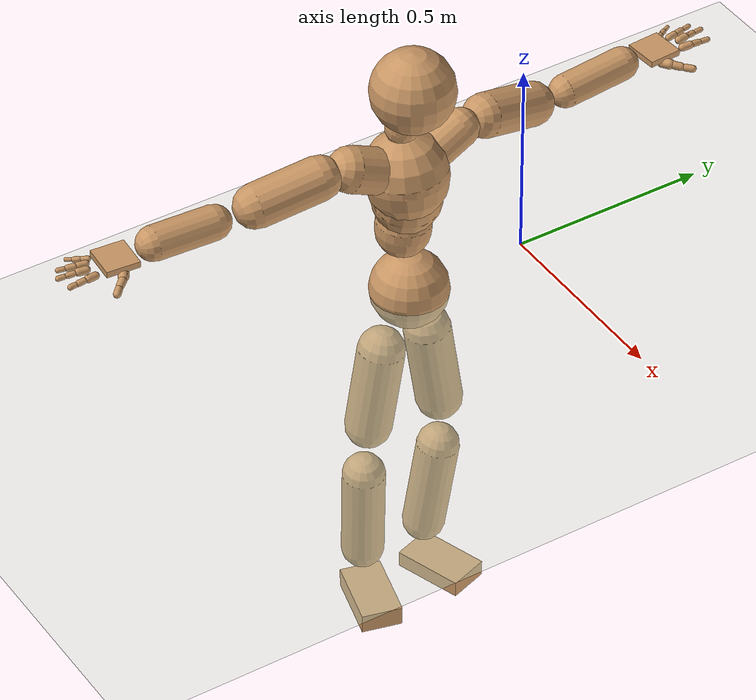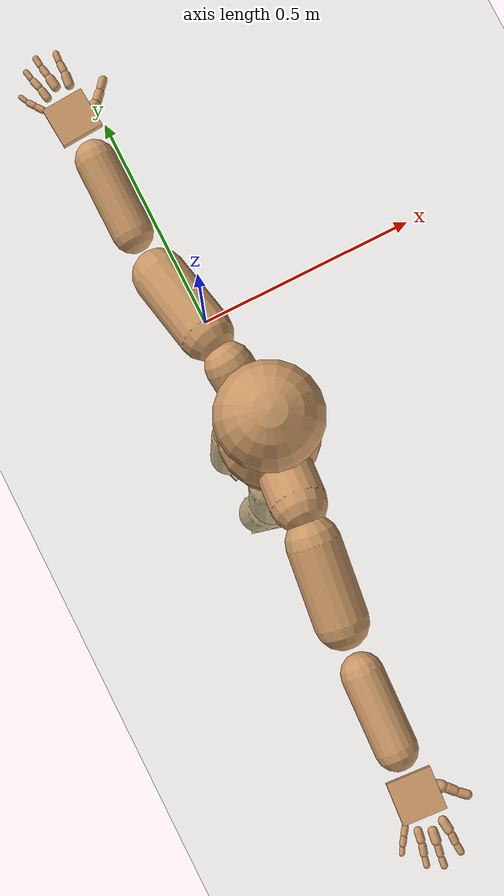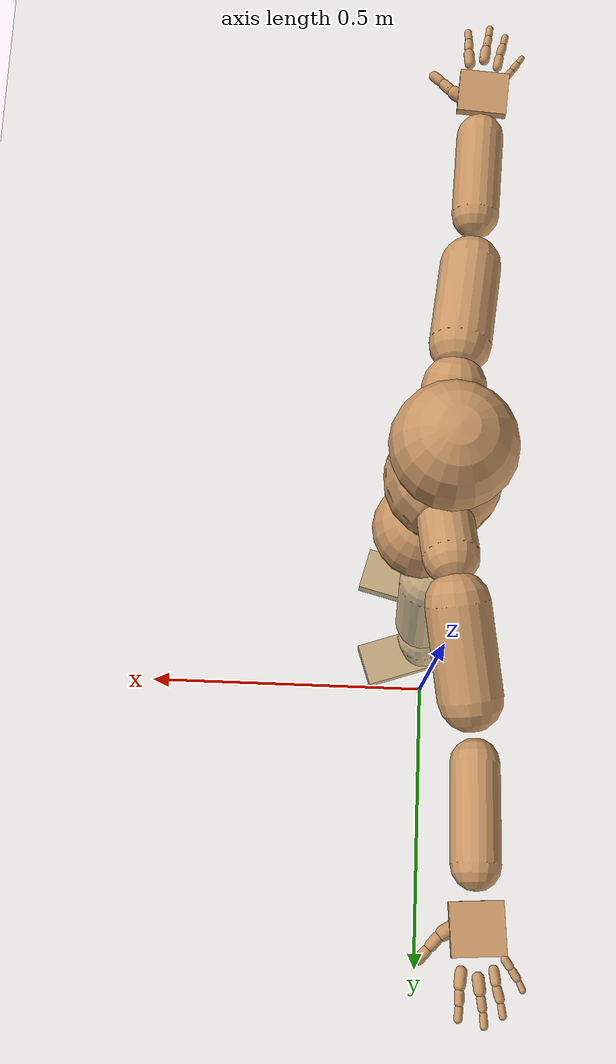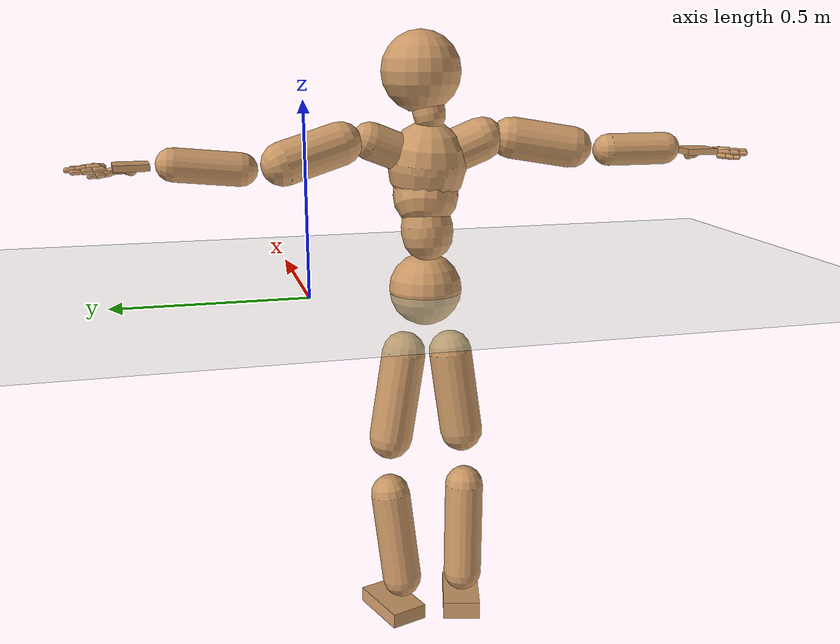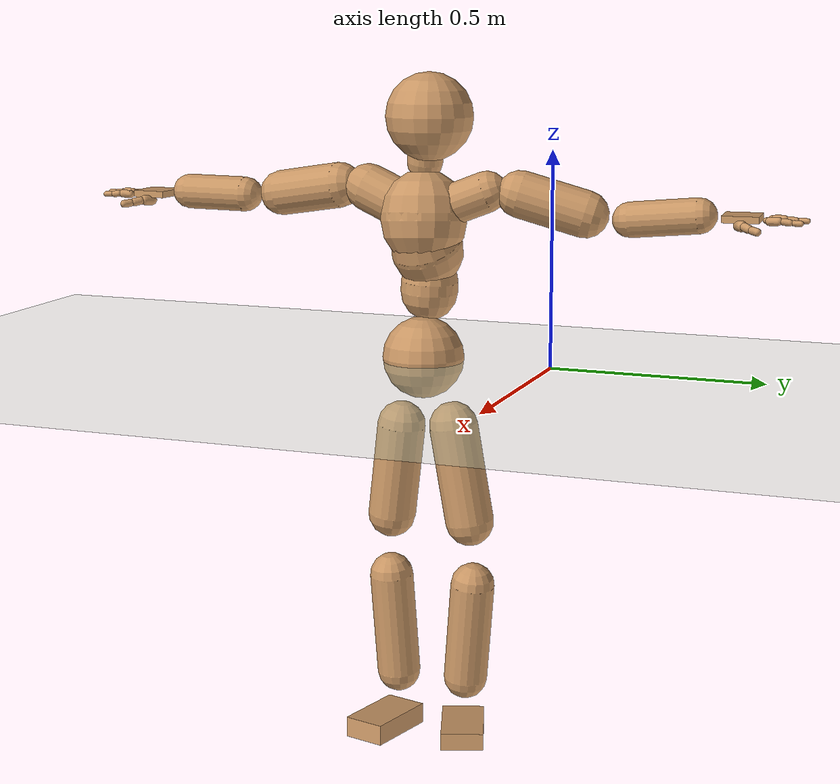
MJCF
<mujoco model="humanoid">
  <compiler coordinate="local" angle="radian"/>
  <default>
    <joint damping="0.0" armature="0.01" stiffness="0.0" limited="true"/>
    <geom conaffinity="1" condim="3" contype="7" margin="0.001" rgba="0.8 0.6 .4 1"/>
  </default>
  <asset>
    <texture type="skybox" builtin="gradient" rgb1=".4 .5 .6" rgb2="0 0 0" width="100" height="100"/>
    <texture builtin="flat" height="1278" mark="cross" markrgb="1 1 1" name="texgeom" random="0.01" rgb1="0.8 0.6 0.4" rgb2="0.8 0.6 0.4" type="cube" width="127"/>
    <texture builtin="checker" height="100" name="texplane" rgb1="0 0 0" rgb2="0.8 0.8 0.8" type="2d" width="100"/>
    <material name="MatPlane" reflectance="0.5" shininess="1" specular="1" texrepeat="60 60" texture="texplane"/>
    <material name="geom" texture="texgeom" texuniform="true"/>
  </asset>
  <worldbody>
    <light cutoff="100" diffuse="1 1 1" dir="-0 0 -1.3" directional="true" exponent="1" pos="0 0 1.3" specular=".1 .1 .1"/>
    <geom conaffinity="1" condim="3" name="floor" pos="0 0 0" rgba="0.8 0.9 0.8 1" size="100 100 .2" type="plane" material="MatPlane"/>
    <body name="Pelvis" pos="0.001 -0.3113 0.0059">
      <freejoint name="Pelvis"/>
      <geom type="sphere" contype="1" conaffinity="1" density="500" size="0.0966" pos="0.0000 0.0000 0.0000" name="Pelvis"/>
      <body name="L_Hip" pos="-0.024 0.053 -0.0884">
        <joint name="L_Hip_x" type="hinge" pos="0 0 0" axis="1 0 0" stiffness="800" damping="80" armature="0.02" range="-180.0000 180.0000"/>
        <joint name="L_Hip_y" type="hinge" pos="0 0 0" axis="0 1 0" stiffness="800" damping="80" armature="0.02" range="-180.0000 180.0000"/>
        <joint name="L_Hip_z" type="hinge" pos="0 0 0" axis="0 0 1" stiffness="800" damping="80" armature="0.02" range="-180.0000 180.0000"/>
        <geom type="capsule" contype="1" conaffinity="1" density="500" fromto="-0.0023 0.0132 -0.0786 -0.0092 0.0526 -0.3144" size="0.0581" name="L_Hip"/>
        <body name="L_Knee" pos="-0.0116 0.0658 -0.393">
          <joint name="L_Knee_x" type="hinge" pos="0 0 0" axis="1 0 0" stiffness="800" damping="80" armature="0.02" range="-180.0000 180.0000"/>
          <joint name="L_Knee_y" type="hinge" pos="0 0 0" axis="0 1 0" stiffness="800" damping="80" armature="0.02" range="-180.0000 180.0000"/>
          <joint name="L_Knee_z" type="hinge" pos="0 0 0" axis="0 0 1" stiffness="800" damping="80" armature="0.02" range="-180.0000 180.0000"/>
          <geom type="capsule" contype="1" conaffinity="1" density="500" fromto="-0.0078 -0.0085 -0.0829 -0.0312 -0.0341 -0.3316" size="0.0533" name="L_Knee"/>
          <body name="L_Ankle" pos="-0.039 -0.0427 -0.4144">
            <joint name="L_Ankle_x" type="hinge" pos="0 0 0" axis="1 0 0" stiffness="800" damping="80" armature="0.02" range="-180.0000 180.0000"/>
            <joint name="L_Ankle_y" type="hinge" pos="0 0 0" axis="0 1 0" stiffness="800" damping="80" armature="0.02" range="-180.0000 180.0000"/>
            <joint name="L_Ankle_z" type="hinge" pos="0 0 0" axis="0 0 1" stiffness="800" damping="80" armature="0.02" range="-180.0000 180.0000"/>
            <geom type="box" contype="1" conaffinity="1" density="500" pos="0.0646 0.0215 -0.0296" size="0.0896 0.0515 0.0209" quat="0.9871 0.0000 0.0000 0.1602" name="L_Ankle"/>
            <body name="L_Toe" pos="0.1291 0.043 -0.0593">
              <joint name="L_Toe_x" type="hinge" pos="0 0 0" axis="1 0 0" stiffness="500" damping="50" armature="0.02" range="-180.0000 180.0000"/>
              <joint name="L_Toe_y" type="hinge" pos="0 0 0" axis="0 1 0" stiffness="500" damping="50" armature="0.02" range="-180.0000 180.0000"/>
              <joint name="L_Toe_z" type="hinge" pos="0 0 0" axis="0 0 1" stiffness="500" damping="50" armature="0.02" range="-180.0000 180.0000"/>
              <geom type="box" contype="1" conaffinity="1" density="500" pos="0.0000 0.0000 0.0300" size="0.001 0.0025 0.0011" quat="0.9863 0.0000 0.0000 0.1647" name="L_Toe"/>
            </body>
          </body>
        </body>
      </body>
      <body name="R_Hip" pos="-0.017 -0.0547 -0.0984">
        <joint name="R_Hip_x" type="hinge" pos="0 0 0" axis="1 0 0" stiffness="800" damping="80" armature="0.02" range="-180.0000 180.0000"/>
        <joint name="R_Hip_y" type="hinge" pos="0 0 0" axis="0 1 0" stiffness="800" damping="80" armature="0.02" range="-180.0000 180.0000"/>
        <joint name="R_Hip_z" type="hinge" pos="0 0 0" axis="0 0 1" stiffness="800" damping="80" armature="0.02" range="-180.0000 180.0000"/>
        <geom type="capsule" contype="1" conaffinity="1" density="500" fromto="-0.0038 -0.0100 -0.0753 -0.0154 -0.0398 -0.3014" size="0.0579" name="R_Hip"/>
        <body name="R_Knee" pos="-0.0192 -0.0498 -0.3767">
          <joint name="R_Knee_x" type="hinge" pos="0 0 0" axis="1 0 0" stiffness="800" damping="80" armature="0.02" range="-180.0000 180.0000"/>
          <joint name="R_Knee_y" type="hinge" pos="0 0 0" axis="0 1 0" stiffness="800" damping="80" armature="0.02" range="-180.0000 180.0000"/>
          <joint name="R_Knee_z" type="hinge" pos="0 0 0" axis="0 0 1" stiffness="800" damping="80" armature="0.02" range="-180.0000 180.0000"/>
          <geom type="capsule" contype="1" conaffinity="1" density="500" fromto="-0.0077 0.0032 -0.0856 -0.0307 0.0126 -0.3423" size="0.053" name="R_Knee"/>
          <body name="R_Ankle" pos="-0.0384 0.0158 -0.4278">
            <joint name="R_Ankle_x" type="hinge" pos="0 0 0" axis="1 0 0" stiffness="800" damping="80" armature="0.02" range="-180.0000 180.0000"/>
            <joint name="R_Ankle_y" type="hinge" pos="0 0 0" axis="0 1 0" stiffness="800" damping="80" armature="0.02" range="-180.0000 180.0000"/>
            <joint name="R_Ankle_z" type="hinge" pos="0 0 0" axis="0 0 1" stiffness="800" damping="80" armature="0.02" range="-180.0000 180.0000"/>
            <geom type="box" contype="1" conaffinity="1" density="500" pos="0.0679 -0.0175 -0.0291" size="0.0896 0.0515 0.0251" quat="0.9920 0.0000 0.0000 -0.1259" name="R_Ankle"/>
            <body name="R_Toe" pos="0.1358 -0.0351 -0.0582">
              <joint name="R_Toe_x" type="hinge" pos="0 0 0" axis="1 0 0" stiffness="500" damping="50" armature="0.02" range="-180.0000 180.0000"/>
              <joint name="R_Toe_y" type="hinge" pos="0 0 0" axis="0 1 0" stiffness="500" damping="50" armature="0.02" range="-180.0000 180.0000"/>
              <joint name="R_Toe_z" type="hinge" pos="0 0 0" axis="0 0 1" stiffness="500" damping="50" armature="0.02" range="-180.0000 180.0000"/>
              <geom type="box" contype="1" conaffinity="1" density="500" pos="0.0000 0.0000 0.0253" size="0.001 0.0025 0.0011" quat="0.9931 0.0000 0.0000 -0.1174" name="R_Toe"/>
            </body>
          </body>
        </body>
      </body>
      <body name="Torso" pos="-0.0342 -0.0006 0.0985">
        <joint name="Torso_x" type="hinge" pos="0 0 0" axis="1 0 0" stiffness="1000" damping="100" armature="0.02" range="-180.0000 180.0000"/>
        <joint name="Torso_y" type="hinge" pos="0 0 0" axis="0 1 0" stiffness="1000" damping="100" armature="0.02" range="-180.0000 180.0000"/>
        <joint name="Torso_z" type="hinge" pos="0 0 0" axis="0 0 1" stiffness="1000" damping="100" armature="0.02" range="-180.0000 180.0000"/>
        <geom type="capsule" contype="1" conaffinity="1" density="500" fromto="0.0034 0.0050 0.0786 0.0023 0.0034 0.0524" size="0.0672" name="Torso"/>
        <body name="Spine" pos="0.0056 0.0084 0.131">
          <joint name="Spine_x" type="hinge" pos="0 0 0" axis="1 0 0" stiffness="1000" damping="100" armature="0.02" range="-180.0000 180.0000"/>
          <joint name="Spine_y" type="hinge" pos="0 0 0" axis="0 1 0" stiffness="1000" damping="100" armature="0.02" range="-180.0000 180.0000"/>
          <joint name="Spine_z" type="hinge" pos="0 0 0" axis="0 0 1" stiffness="1000" damping="100" armature="0.02" range="-180.0000 180.0000"/>
          <geom type="capsule" contype="1" conaffinity="1" density="500" fromto="0.0146 -0.0050 0.0312 0.0097 -0.0033 0.0208" size="0.0847" name="Spine"/>
          <body name="Chest" pos="0.0243 -0.0083 0.052">
            <joint name="Chest_x" type="hinge" pos="0 0 0" axis="1 0 0" stiffness="1000" damping="100" armature="0.02" range="-180.0000 180.0000"/>
            <joint name="Chest_y" type="hinge" pos="0 0 0" axis="0 1 0" stiffness="1000" damping="100" armature="0.02" range="-180.0000 180.0000"/>
            <joint name="Chest_z" type="hinge" pos="0 0 0" axis="0 0 1" stiffness="1000" damping="100" armature="0.02" range="-180.0000 180.0000"/>
            <geom type="capsule" contype="1" conaffinity="1" density="500" fromto="-0.0068 -0.0022 0.0567 -0.0046 -0.0015 0.0378" size="0.1014" name="Chest"/>
            <body name="Neck" pos="-0.0239 -0.0087 0.1456">
              <joint name="Neck_x" type="hinge" pos="0 0 0" axis="1 0 0" stiffness="500" damping="50" armature="0.02" range="-180.0000 180.0000"/>
              <joint name="Neck_y" type="hinge" pos="0 0 0" axis="0 1 0" stiffness="500" damping="50" armature="0.02" range="-180.0000 180.0000"/>
              <joint name="Neck_z" type="hinge" pos="0 0 0" axis="0 0 1" stiffness="500" damping="50" armature="0.02" range="-180.0000 180.0000"/>
              <geom type="capsule" contype="1" conaffinity="1" density="500" fromto="0.0044 0.0045 0.0268 0.0176 0.0180 0.1071" size="0.0414" name="Neck"/>
              <body name="Head" pos="0.022 0.0225 0.1339">
                <joint name="Head_x" type="hinge" pos="0 0 0" axis="1 0 0" stiffness="500" damping="50" armature="0.02" range="-180.0000 180.0000"/>
                <joint name="Head_y" type="hinge" pos="0 0 0" axis="0 1 0" stiffness="500" damping="50" armature="0.02" range="-180.0000 180.0000"/>
                <joint name="Head_z" type="hinge" pos="0 0 0" axis="0 0 1" stiffness="500" damping="50" armature="0.02" range="-180.0000 180.0000"/>
                <geom type="sphere" contype="1" conaffinity="1" density="500" size="0.1019" pos="0.0000 0.0000 0.0000" name="Head"/>
              </body>
            </body>
            <body name="L_Thorax" pos="-0.0035 0.0415 0.0687">
              <joint name="L_Thorax_x" type="hinge" pos="0 0 0" axis="1 0 0" stiffness="500" damping="50" armature="0.02" range="-180.0000 180.0000"/>
              <joint name="L_Thorax_y" type="hinge" pos="0 0 0" axis="0 1 0" stiffness="500" damping="50" armature="0.02" range="-180.0000 180.0000"/>
              <joint name="L_Thorax_z" type="hinge" pos="0 0 0" axis="0 0 1" stiffness="500" damping="50" armature="0.02" range="-180.0000 180.0000"/>
              <geom type="capsule" contype="1" conaffinity="1" density="500" fromto="-0.0030 0.0269 0.0106 -0.0120 0.1077 0.0426" size="0.0478" name="L_Thorax"/>
              <body name="L_Shoulder" pos="-0.015 0.1346 0.0532">
                <joint name="L_Shoulder_x" type="hinge" pos="0 0 0" axis="1 0 0" stiffness="500" damping="50" armature="0.02" range="-180.0000 180.0000"/>
                <joint name="L_Shoulder_y" type="hinge" pos="0 0 0" axis="0 1 0" stiffness="500" damping="50" armature="0.02" range="-180.0000 180.0000"/>
                <joint name="L_Shoulder_z" type="hinge" pos="0 0 0" axis="0 0 1" stiffness="500" damping="50" armature="0.02" range="-180.0000 180.0000"/>
                <geom type="capsule" contype="1" conaffinity="1" density="500" fromto="-0.0088 0.0494 -0.0144 -0.0354 0.1975 -0.0575" size="0.0544" name="L_Shoulder"/>
                <body name="L_Elbow" pos="-0.0442 0.2469 -0.0719">
                  <joint name="L_Elbow_x" type="hinge" pos="0 0 0" axis="1 0 0" stiffness="500" damping="50" armature="0.02" range="-720.0000 720.0000"/>
                  <joint name="L_Elbow_y" type="hinge" pos="0 0 0" axis="0 1 0" stiffness="500" damping="50" armature="0.02" range="-720.0000 720.0000"/>
                  <joint name="L_Elbow_z" type="hinge" pos="0 0 0" axis="0 0 1" stiffness="500" damping="50" armature="0.02" range="-720.0000 720.0000"/>
                  <geom type="capsule" contype="1" conaffinity="1" density="500" fromto="-0.0003 0.0527 0.0052 -0.0011 0.2109 0.0207" size="0.0409" name="L_Elbow"/>
                  <body name="L_Wrist" pos="-0.0013 0.2636 0.0259">
                    <joint name="L_Wrist_x" type="hinge" pos="0 0 0" axis="1 0 0" stiffness="300" damping="30" armature="0.02" range="-180.0000 180.0000"/>
                    <joint name="L_Wrist_y" type="hinge" pos="0 0 0" axis="0 1 0" stiffness="300" damping="30" armature="0.02" range="-180.0000 180.0000"/>
                    <joint name="L_Wrist_z" type="hinge" pos="0 0 0" axis="0 0 1" stiffness="300" damping="30" armature="0.02" range="-180.0000 180.0000"/>
                    <geom type="box" contype="1" conaffinity="1" density="500" pos="-0.0030 0.0433 -0.0060" size="0.0417 0.0433 0.0078" quat="0.7308 0.0000 0.0000 -0.6826" name="L_Wrist"/>
                    <body name="L_Index1" pos="0.0205 0.1014 -0.0089">
                      <joint name="L_Index1_x" type="hinge" pos="0 0 0" axis="1 0 0" stiffness="100" damping="10" armature="0.02" range="-180.0000 180.0000"/>
                      <joint name="L_Index1_y" type="hinge" pos="0 0 0" axis="0 1 0" stiffness="100" damping="10" armature="0.02" range="-180.0000 180.0000"/>
                      <joint name="L_Index1_z" type="hinge" pos="0 0 0" axis="0 0 1" stiffness="100" damping="10" armature="0.02" range="-180.0000 180.0000"/>
                      <geom type="capsule" contype="1" conaffinity="1" density="500" fromto="0.0007 0.0065 0.0003 0.0028 0.0260 0.0013" size="0.0095" name="L_Index1"/>
                      <body name="L_Index2" pos="0.0035 0.0325 0.0016">
                        <joint name="L_Index2_x" type="hinge" pos="0 0 0" axis="1 0 0" stiffness="100" damping="10" armature="0.02" range="-180.0000 180.0000"/>
                        <joint name="L_Index2_y" type="hinge" pos="0 0 0" axis="0 1 0" stiffness="100" damping="10" armature="0.02" range="-180.0000 180.0000"/>
                        <joint name="L_Index2_z" type="hinge" pos="0 0 0" axis="0 0 1" stiffness="100" damping="10" armature="0.02" range="-180.0000 180.0000"/>
                        <geom type="capsule" contype="1" conaffinity="1" density="500" fromto="-0.0001 0.0046 -0.0005 -0.0003 0.0184 -0.0021" size="0.0077" name="L_Index2"/>
                        <body name="L_Index3" pos="-0.0003 0.023 -0.0026">
                          <joint name="L_Index3_x" type="hinge" pos="0 0 0" axis="1 0 0" stiffness="100" damping="10" armature="0.02" range="-180.0000 180.0000"/>
                          <joint name="L_Index3_y" type="hinge" pos="0 0 0" axis="0 1 0" stiffness="100" damping="10" armature="0.02" range="-180.0000 180.0000"/>
                          <joint name="L_Index3_z" type="hinge" pos="0 0 0" axis="0 0 1" stiffness="100" damping="10" armature="0.02" range="-180.0000 180.0000"/>
                          <geom type="capsule" contype="1" conaffinity="1" density="500" fromto="0.0003 0.0050 -0.0001 0.0013 0.0200 -0.0005" size="0.0066" name="L_Index3"/>
                        </body>
                      </body>
                    </body>
                    <body name="L_Middle1" pos="-0.0039 0.1096 -0.0064">
                      <joint name="L_Middle1_x" type="hinge" pos="0 0 0" axis="1 0 0" stiffness="100" damping="10" armature="0.02" range="-180.0000 180.0000"/>
                      <joint name="L_Middle1_y" type="hinge" pos="0 0 0" axis="0 1 0" stiffness="100" damping="10" armature="0.02" range="-180.0000 180.0000"/>
                      <joint name="L_Middle1_z" type="hinge" pos="0 0 0" axis="0 0 1" stiffness="100" damping="10" armature="0.02" range="-180.0000 180.0000"/>
                      <geom type="capsule" contype="1" conaffinity="1" density="500" fromto="-0.0009 0.0062 0.0001 -0.0035 0.0250 0.0003" size="0.0096" name="L_Middle1"/>
                      <body name="L_Middle2" pos="-0.0044 0.0312 0.0004">
                        <joint name="L_Middle2_x" type="hinge" pos="0 0 0" axis="1 0 0" stiffness="100" damping="10" armature="0.02" range="-180.0000 180.0000"/>
                        <joint name="L_Middle2_y" type="hinge" pos="0 0 0" axis="0 1 0" stiffness="100" damping="10" armature="0.02" range="-180.0000 180.0000"/>
                        <joint name="L_Middle2_z" type="hinge" pos="0 0 0" axis="0 0 1" stiffness="100" damping="10" armature="0.02" range="-180.0000 180.0000"/>
                        <geom type="capsule" contype="1" conaffinity="1" density="500" fromto="-0.0009 0.0048 -0.0005 -0.0035 0.0191 -0.0020" size="0.0072" name="L_Middle2"/>
                        <body name="L_Middle3" pos="-0.0044 0.0239 -0.0025">
                          <joint name="L_Middle3_x" type="hinge" pos="0 0 0" axis="1 0 0" stiffness="100" damping="10" armature="0.02" range="-180.0000 180.0000"/>
                          <joint name="L_Middle3_y" type="hinge" pos="0 0 0" axis="0 1 0" stiffness="100" damping="10" armature="0.02" range="-180.0000 180.0000"/>
                          <joint name="L_Middle3_z" type="hinge" pos="0 0 0" axis="0 0 1" stiffness="100" damping="10" armature="0.02" range="-180.0000 180.0000"/>
                          <geom type="capsule" contype="1" conaffinity="1" density="500" fromto="-0.0005 0.0052 -0.0001 -0.0019 0.0207 -0.0004" size="0.0063" name="L_Middle3"/>
                        </body>
                      </body>
                    </body>
                    <body name="L_Pinky1" pos="-0.0451 0.0845 -0.0152">
                      <joint name="L_Pinky1_x" type="hinge" pos="0 0 0" axis="1 0 0" stiffness="100" damping="10" armature="0.02" range="-180.0000 180.0000"/>
                      <joint name="L_Pinky1_y" type="hinge" pos="0 0 0" axis="0 1 0" stiffness="100" damping="10" armature="0.02" range="-180.0000 180.0000"/>
                      <joint name="L_Pinky1_z" type="hinge" pos="0 0 0" axis="0 0 1" stiffness="100" damping="10" armature="0.02" range="-180.0000 180.0000"/>
                      <geom type="capsule" contype="1" conaffinity="1" density="500" fromto="-0.0024 0.0033 -0.0003 -0.0094 0.0134 -0.0013" size="0.0068" name="L_Pinky1"/>
                      <body name="L_Pinky2" pos="-0.0118 0.0167 -0.0016">
                        <joint name="L_Pinky2_x" type="hinge" pos="0 0 0" axis="1 0 0" stiffness="100" damping="10" armature="0.02" range="-180.0000 180.0000"/>
                        <joint name="L_Pinky2_y" type="hinge" pos="0 0 0" axis="0 1 0" stiffness="100" damping="10" armature="0.02" range="-180.0000 180.0000"/>
                        <joint name="L_Pinky2_z" type="hinge" pos="0 0 0" axis="0 0 1" stiffness="100" damping="10" armature="0.02" range="-180.0000 180.0000"/>
                        <geom type="capsule" contype="1" conaffinity="1" density="500" fromto="-0.0022 0.0033 -0.0004 -0.0088 0.0131 -0.0015" size="0.0066" name="L_Pinky2"/>
                        <body name="L_Pinky3" pos="-0.011 0.0164 -0.0019">
                          <joint name="L_Pinky3_x" type="hinge" pos="0 0 0" axis="1 0 0" stiffness="100" damping="10" armature="0.02" range="-180.0000 180.0000"/>
                          <joint name="L_Pinky3_y" type="hinge" pos="0 0 0" axis="0 1 0" stiffness="100" damping="10" armature="0.02" range="-180.0000 180.0000"/>
                          <joint name="L_Pinky3_z" type="hinge" pos="0 0 0" axis="0 0 1" stiffness="100" damping="10" armature="0.02" range="-180.0000 180.0000"/>
                          <geom type="capsule" contype="1" conaffinity="1" density="500" fromto="-0.0018 0.0037 0.0000 -0.0072 0.0147 0.0001" size="0.005" name="L_Pinky3"/>
                        </body>
                      </body>
                    </body>
                    <body name="L_Ring1" pos="-0.0281 0.0978 -0.0097">
                      <joint name="L_Ring1_x" type="hinge" pos="0 0 0" axis="1 0 0" stiffness="100" damping="10" armature="0.02" range="-180.0000 180.0000"/>
                      <joint name="L_Ring1_y" type="hinge" pos="0 0 0" axis="0 1 0" stiffness="100" damping="10" armature="0.02" range="-180.0000 180.0000"/>
                      <joint name="L_Ring1_z" type="hinge" pos="0 0 0" axis="0 0 1" stiffness="100" damping="10" armature="0.02" range="-180.0000 180.0000"/>
                      <geom type="capsule" contype="1" conaffinity="1" density="500" fromto="-0.0010 0.0058 0.0001 -0.0040 0.0231 0.0004" size="0.0082" name="L_Ring1"/>
                      <body name="L_Ring2" pos="-0.005 0.0289 0.0005">
                        <joint name="L_Ring2_x" type="hinge" pos="0 0 0" axis="1 0 0" stiffness="100" damping="10" armature="0.02" range="-180.0000 180.0000"/>
                        <joint name="L_Ring2_y" type="hinge" pos="0 0 0" axis="0 1 0" stiffness="100" damping="10" armature="0.02" range="-180.0000 180.0000"/>
                        <joint name="L_Ring2_z" type="hinge" pos="0 0 0" axis="0 0 1" stiffness="100" damping="10" armature="0.02" range="-180.0000 180.0000"/>
                        <geom type="capsule" contype="1" conaffinity="1" density="500" fromto="-0.0013 0.0047 -0.0005 -0.0054 0.0187 -0.0018" size="0.0077" name="L_Ring2"/>
                        <body name="L_Ring3" pos="-0.0067 0.0234 -0.0023">
                          <joint name="L_Ring3_x" type="hinge" pos="0 0 0" axis="1 0 0" stiffness="100" damping="10" armature="0.02" range="-180.0000 180.0000"/>
                          <joint name="L_Ring3_y" type="hinge" pos="0 0 0" axis="0 1 0" stiffness="100" damping="10" armature="0.02" range="-180.0000 180.0000"/>
                          <joint name="L_Ring3_z" type="hinge" pos="0 0 0" axis="0 0 1" stiffness="100" damping="10" armature="0.02" range="-180.0000 180.0000"/>
                          <geom type="capsule" contype="1" conaffinity="1" density="500" fromto="-0.0009 0.0051 -0.0001 -0.0038 0.0203 -0.0002" size="0.0059" name="L_Ring3"/>
                        </body>
                      </body>
                    </body>
                    <body name="L_Thumb1" pos="0.0271 0.0393 -0.0199">
                      <joint name="L_Thumb1_x" type="hinge" pos="0 0 0" axis="1 0 0" stiffness="100" damping="10" armature="0.02" range="-180.0000 180.0000"/>
                      <joint name="L_Thumb1_y" type="hinge" pos="0 0 0" axis="0 1 0" stiffness="100" damping="10" armature="0.02" range="-180.0000 180.0000"/>
                      <joint name="L_Thumb1_z" type="hinge" pos="0 0 0" axis="0 0 1" stiffness="100" damping="10" armature="0.02" range="-180.0000 180.0000"/>
                      <geom type="capsule" contype="1" conaffinity="1" density="500" fromto="0.0053 0.0032 0.0003 0.0213 0.0130 0.0014" size="0.0124" name="L_Thumb1"/>
                      <body name="L_Thumb2" pos="0.0266 0.0162 0.0017">
                        <joint name="L_Thumb2_x" type="hinge" pos="0 0 0" axis="1 0 0" stiffness="100" damping="10" armature="0.02" range="-180.0000 180.0000"/>
                        <joint name="L_Thumb2_y" type="hinge" pos="0 0 0" axis="0 1 0" stiffness="100" damping="10" armature="0.02" range="-180.0000 180.0000"/>
                        <joint name="L_Thumb2_z" type="hinge" pos="0 0 0" axis="0 0 1" stiffness="100" damping="10" armature="0.02" range="-180.0000 180.0000"/>
                        <geom type="capsule" contype="1" conaffinity="1" density="500" fromto="0.0033 0.0040 -0.0010 0.0134 0.0159 -0.0038" size="0.0098" name="L_Thumb2"/>
                        <body name="L_Thumb3" pos="0.0167 0.0199 -0.0048">
                          <joint name="L_Thumb3_x" type="hinge" pos="0 0 0" axis="1 0 0" stiffness="100" damping="10" armature="0.02" range="-180.0000 180.0000"/>
                          <joint name="L_Thumb3_y" type="hinge" pos="0 0 0" axis="0 1 0" stiffness="100" damping="10" armature="0.02" range="-180.0000 180.0000"/>
                          <joint name="L_Thumb3_z" type="hinge" pos="0 0 0" axis="0 0 1" stiffness="100" damping="10" armature="0.02" range="-180.0000 180.0000"/>
                          <geom type="capsule" contype="1" conaffinity="1" density="500" fromto="0.0037 0.0044 -0.0006 0.0150 0.0175 -0.0022" size="0.0089" name="L_Thumb3"/>
                        </body>
                      </body>
                    </body>
                  </body>
                </body>
              </body>
            </body>
            <body name="R_Thorax" pos="-0.0067 -0.0439 0.0692">
              <joint name="R_Thorax_x" type="hinge" pos="0 0 0" axis="1 0 0" stiffness="500" damping="50" armature="0.02" range="-180.0000 180.0000"/>
              <joint name="R_Thorax_y" type="hinge" pos="0 0 0" axis="0 1 0" stiffness="500" damping="50" armature="0.02" range="-180.0000 180.0000"/>
              <joint name="R_Thorax_z" type="hinge" pos="0 0 0" axis="0 0 1" stiffness="500" damping="50" armature="0.02" range="-180.0000 180.0000"/>
              <geom type="capsule" contype="1" conaffinity="1" density="500" fromto="-0.0026 -0.0250 0.0104 -0.0103 -0.0999 0.0416" size="0.056" name="R_Thorax"/>
              <body name="R_Shoulder" pos="-0.0129 -0.1249 0.0521">
                <joint name="R_Shoulder_x" type="hinge" pos="0 0 0" axis="1 0 0" stiffness="500" damping="50" armature="0.02" range="-180.0000 180.0000"/>
                <joint name="R_Shoulder_y" type="hinge" pos="0 0 0" axis="0 1 0" stiffness="500" damping="50" armature="0.02" range="-180.0000 180.0000"/>
                <joint name="R_Shoulder_z" type="hinge" pos="0 0 0" axis="0 0 1" stiffness="500" damping="50" armature="0.02" range="-180.0000 180.0000"/>
                <geom type="capsule" contype="1" conaffinity="1" density="500" fromto="-0.0063 -0.0526 -0.0086 -0.0252 -0.2106 -0.0345" size="0.0536" name="R_Shoulder"/>
                <body name="R_Elbow" pos="-0.0315 -0.2632 -0.0432">
                  <joint name="R_Elbow_x" type="hinge" pos="0 0 0" axis="1 0 0" stiffness="500" damping="50" armature="0.02" range="-720.0000 720.0000"/>
                  <joint name="R_Elbow_y" type="hinge" pos="0 0 0" axis="0 1 0" stiffness="500" damping="50" armature="0.02" range="-720.0000 720.0000"/>
                  <joint name="R_Elbow_z" type="hinge" pos="0 0 0" axis="0 0 1" stiffness="500" damping="50" armature="0.02" range="-720.0000 720.0000"/>
                  <geom type="capsule" contype="1" conaffinity="1" density="500" fromto="-0.0024 -0.0512 0.0002 -0.0096 -0.2047 0.0010" size="0.0419" name="R_Elbow"/>
                  <body name="R_Wrist" pos="-0.012 -0.2559 0.0012">
                    <joint name="R_Wrist_x" type="hinge" pos="0 0 0" axis="1 0 0" stiffness="300" damping="30" armature="0.02" range="-180.0000 180.0000"/>
                    <joint name="R_Wrist_y" type="hinge" pos="0 0 0" axis="0 1 0" stiffness="300" damping="30" armature="0.02" range="-180.0000 180.0000"/>
                    <joint name="R_Wrist_z" type="hinge" pos="0 0 0" axis="0 0 1" stiffness="300" damping="30" armature="0.02" range="-180.0000 180.0000"/>
                    <geom type="box" contype="1" conaffinity="1" density="500" pos="-0.0034 -0.0431 -0.0078" size="0.0417 0.0444 0.008" quat="0.7348 0.0000 0.0000 0.6783" name="R_Wrist"/>
                    <body name="R_Index1" pos="0.0195 -0.101 -0.0124">
                      <joint name="R_Index1_x" type="hinge" pos="0 0 0" axis="1 0 0" stiffness="100" damping="10" armature="0.02" range="-180.0000 180.0000"/>
                      <joint name="R_Index1_y" type="hinge" pos="0 0 0" axis="0 1 0" stiffness="100" damping="10" armature="0.02" range="-180.0000 180.0000"/>
                      <joint name="R_Index1_z" type="hinge" pos="0 0 0" axis="0 0 1" stiffness="100" damping="10" armature="0.02" range="-180.0000 180.0000"/>
                      <geom type="capsule" contype="1" conaffinity="1" density="500" fromto="0.0007 -0.0065 0.0003 0.0028 -0.0260 0.0013" size="0.0095" name="R_Index1"/>
                      <body name="R_Index2" pos="0.0035 -0.0325 0.0016">
                        <joint name="R_Index2_x" type="hinge" pos="0 0 0" axis="1 0 0" stiffness="100" damping="10" armature="0.02" range="-180.0000 180.0000"/>
                        <joint name="R_Index2_y" type="hinge" pos="0 0 0" axis="0 1 0" stiffness="100" damping="10" armature="0.02" range="-180.0000 180.0000"/>
                        <joint name="R_Index2_z" type="hinge" pos="0 0 0" axis="0 0 1" stiffness="100" damping="10" armature="0.02" range="-180.0000 180.0000"/>
                        <geom type="capsule" contype="1" conaffinity="1" density="500" fromto="-0.0001 -0.0046 -0.0005 -0.0003 -0.0184 -0.0021" size="0.0077" name="R_Index2"/>
                        <body name="R_Index3" pos="-0.0003 -0.023 -0.0026">
                          <joint name="R_Index3_x" type="hinge" pos="0 0 0" axis="1 0 0" stiffness="100" damping="10" armature="0.02" range="-180.0000 180.0000"/>
                          <joint name="R_Index3_y" type="hinge" pos="0 0 0" axis="0 1 0" stiffness="100" damping="10" armature="0.02" range="-180.0000 180.0000"/>
                          <joint name="R_Index3_z" type="hinge" pos="0 0 0" axis="0 0 1" stiffness="100" damping="10" armature="0.02" range="-180.0000 180.0000"/>
                          <geom type="capsule" contype="1" conaffinity="1" density="500" fromto="0.0003 -0.0042 -0.0001 0.0013 -0.0168 -0.0005" size="0.0069" name="R_Index3"/>
                        </body>
                      </body>
                    </body>
                    <body name="R_Middle1" pos="-0.0049 -0.1092 -0.0099">
                      <joint name="R_Middle1_x" type="hinge" pos="0 0 0" axis="1 0 0" stiffness="100" damping="10" armature="0.02" range="-180.0000 180.0000"/>
                      <joint name="R_Middle1_y" type="hinge" pos="0 0 0" axis="0 1 0" stiffness="100" damping="10" armature="0.02" range="-180.0000 180.0000"/>
                      <joint name="R_Middle1_z" type="hinge" pos="0 0 0" axis="0 0 1" stiffness="100" damping="10" armature="0.02" range="-180.0000 180.0000"/>
                      <geom type="capsule" contype="1" conaffinity="1" density="500" fromto="-0.0009 -0.0062 0.0001 -0.0035 -0.0250 0.0003" size="0.0096" name="R_Middle1"/>
                      <body name="R_Middle2" pos="-0.0044 -0.0312 0.0004">
                        <joint name="R_Middle2_x" type="hinge" pos="0 0 0" axis="1 0 0" stiffness="100" damping="10" armature="0.02" range="-180.0000 180.0000"/>
                        <joint name="R_Middle2_y" type="hinge" pos="0 0 0" axis="0 1 0" stiffness="100" damping="10" armature="0.02" range="-180.0000 180.0000"/>
                        <joint name="R_Middle2_z" type="hinge" pos="0 0 0" axis="0 0 1" stiffness="100" damping="10" armature="0.02" range="-180.0000 180.0000"/>
                        <geom type="capsule" contype="1" conaffinity="1" density="500" fromto="-0.0009 -0.0048 -0.0005 -0.0035 -0.0191 -0.0020" size="0.0072" name="R_Middle2"/>
                        <body name="R_Middle3" pos="-0.0044 -0.0239 -0.0025">
                          <joint name="R_Middle3_x" type="hinge" pos="0 0 0" axis="1 0 0" stiffness="100" damping="10" armature="0.02" range="-180.0000 180.0000"/>
                          <joint name="R_Middle3_y" type="hinge" pos="0 0 0" axis="0 1 0" stiffness="100" damping="10" armature="0.02" range="-180.0000 180.0000"/>
                          <joint name="R_Middle3_z" type="hinge" pos="0 0 0" axis="0 0 1" stiffness="100" damping="10" armature="0.02" range="-180.0000 180.0000"/>
                          <geom type="capsule" contype="1" conaffinity="1" density="500" fromto="-0.0005 -0.0044 -0.0001 -0.0019 -0.0175 -0.0004" size="0.0066" name="R_Middle3"/>
                        </body>
                      </body>
                    </body>
                    <body name="R_Pinky1" pos="-0.0461 -0.0841 -0.0187">
                      <joint name="R_Pinky1_x" type="hinge" pos="0 0 0" axis="1 0 0" stiffness="100" damping="10" armature="0.02" range="-180.0000 180.0000"/>
                      <joint name="R_Pinky1_y" type="hinge" pos="0 0 0" axis="0 1 0" stiffness="100" damping="10" armature="0.02" range="-180.0000 180.0000"/>
                      <joint name="R_Pinky1_z" type="hinge" pos="0 0 0" axis="0 0 1" stiffness="100" damping="10" armature="0.02" range="-180.0000 180.0000"/>
                      <geom type="capsule" contype="1" conaffinity="1" density="500" fromto="-0.0024 -0.0033 -0.0003 -0.0094 -0.0134 -0.0013" size="0.0068" name="R_Pinky1"/>
                      <body name="R_Pinky2" pos="-0.0118 -0.0167 -0.0016">
                        <joint name="R_Pinky2_x" type="hinge" pos="0 0 0" axis="1 0 0" stiffness="100" damping="10" armature="0.02" range="-180.0000 180.0000"/>
                        <joint name="R_Pinky2_y" type="hinge" pos="0 0 0" axis="0 1 0" stiffness="100" damping="10" armature="0.02" range="-180.0000 180.0000"/>
                        <joint name="R_Pinky2_z" type="hinge" pos="0 0 0" axis="0 0 1" stiffness="100" damping="10" armature="0.02" range="-180.0000 180.0000"/>
                        <geom type="capsule" contype="1" conaffinity="1" density="500" fromto="-0.0022 -0.0033 -0.0004 -0.0088 -0.0131 -0.0015" size="0.0066" name="R_Pinky2"/>
                        <body name="R_Pinky3" pos="-0.011 -0.0164 -0.0019">
                          <joint name="R_Pinky3_x" type="hinge" pos="0 0 0" axis="1 0 0" stiffness="100" damping="10" armature="0.02" range="-180.0000 180.0000"/>
                          <joint name="R_Pinky3_y" type="hinge" pos="0 0 0" axis="0 1 0" stiffness="100" damping="10" armature="0.02" range="-180.0000 180.0000"/>
                          <joint name="R_Pinky3_z" type="hinge" pos="0 0 0" axis="0 0 1" stiffness="100" damping="10" armature="0.02" range="-180.0000 180.0000"/>
                          <geom type="capsule" contype="1" conaffinity="1" density="500" fromto="-0.0018 -0.0029 0.0000 -0.0072 -0.0115 0.0001" size="0.0052" name="R_Pinky3"/>
                        </body>
                      </body>
                    </body>
                    <body name="R_Ring1" pos="-0.0291 -0.0974 -0.0132">
                      <joint name="R_Ring1_x" type="hinge" pos="0 0 0" axis="1 0 0" stiffness="100" damping="10" armature="0.02" range="-180.0000 180.0000"/>
                      <joint name="R_Ring1_y" type="hinge" pos="0 0 0" axis="0 1 0" stiffness="100" damping="10" armature="0.02" range="-180.0000 180.0000"/>
                      <joint name="R_Ring1_z" type="hinge" pos="0 0 0" axis="0 0 1" stiffness="100" damping="10" armature="0.02" range="-180.0000 180.0000"/>
                      <geom type="capsule" contype="1" conaffinity="1" density="500" fromto="-0.0010 -0.0058 0.0001 -0.0040 -0.0231 0.0004" size="0.0082" name="R_Ring1"/>
                      <body name="R_Ring2" pos="-0.005 -0.0289 0.0005">
                        <joint name="R_Ring2_x" type="hinge" pos="0 0 0" axis="1 0 0" stiffness="100" damping="10" armature="0.02" range="-180.0000 180.0000"/>
                        <joint name="R_Ring2_y" type="hinge" pos="0 0 0" axis="0 1 0" stiffness="100" damping="10" armature="0.02" range="-180.0000 180.0000"/>
                        <joint name="R_Ring2_z" type="hinge" pos="0 0 0" axis="0 0 1" stiffness="100" damping="10" armature="0.02" range="-180.0000 180.0000"/>
                        <geom type="capsule" contype="1" conaffinity="1" density="500" fromto="-0.0013 -0.0047 -0.0005 -0.0054 -0.0187 -0.0018" size="0.0077" name="R_Ring2"/>
                        <body name="R_Ring3" pos="-0.0067 -0.0234 -0.0023">
                          <joint name="R_Ring3_x" type="hinge" pos="0 0 0" axis="1 0 0" stiffness="100" damping="10" armature="0.02" range="-180.0000 180.0000"/>
                          <joint name="R_Ring3_y" type="hinge" pos="0 0 0" axis="0 1 0" stiffness="100" damping="10" armature="0.02" range="-180.0000 180.0000"/>
                          <joint name="R_Ring3_z" type="hinge" pos="0 0 0" axis="0 0 1" stiffness="100" damping="10" armature="0.02" range="-180.0000 180.0000"/>
                          <geom type="capsule" contype="1" conaffinity="1" density="500" fromto="-0.0009 -0.0043 -0.0001 -0.0038 -0.0171 -0.0002" size="0.0062" name="R_Ring3"/>
                        </body>
                      </body>
                    </body>
                    <body name="R_Thumb1" pos="0.0261 -0.0389 -0.0234">
                      <joint name="R_Thumb1_x" type="hinge" pos="0 0 0" axis="1 0 0" stiffness="100" damping="10" armature="0.02" range="-180.0000 180.0000"/>
                      <joint name="R_Thumb1_y" type="hinge" pos="0 0 0" axis="0 1 0" stiffness="100" damping="10" armature="0.02" range="-180.0000 180.0000"/>
                      <joint name="R_Thumb1_z" type="hinge" pos="0 0 0" axis="0 0 1" stiffness="100" damping="10" armature="0.02" range="-180.0000 180.0000"/>
                      <geom type="capsule" contype="1" conaffinity="1" density="500" fromto="0.0053 -0.0032 0.0003 0.0213 -0.0130 0.0014" size="0.0124" name="R_Thumb1"/>
                      <body name="R_Thumb2" pos="0.0266 -0.0162 0.0017">
                        <joint name="R_Thumb2_x" type="hinge" pos="0 0 0" axis="1 0 0" stiffness="100" damping="10" armature="0.02" range="-180.0000 180.0000"/>
                        <joint name="R_Thumb2_y" type="hinge" pos="0 0 0" axis="0 1 0" stiffness="100" damping="10" armature="0.02" range="-180.0000 180.0000"/>
                        <joint name="R_Thumb2_z" type="hinge" pos="0 0 0" axis="0 0 1" stiffness="100" damping="10" armature="0.02" range="-180.0000 180.0000"/>
                        <geom type="capsule" contype="1" conaffinity="1" density="500" fromto="0.0033 -0.0040 -0.0010 0.0134 -0.0159 -0.0038" size="0.0098" name="R_Thumb2"/>
                        <body name="R_Thumb3" pos="0.0167 -0.0199 -0.0048">
                          <joint name="R_Thumb3_x" type="hinge" pos="0 0 0" axis="1 0 0" stiffness="100" damping="10" armature="0.02" range="-180.0000 180.0000"/>
                          <joint name="R_Thumb3_y" type="hinge" pos="0 0 0" axis="0 1 0" stiffness="100" damping="10" armature="0.02" range="-180.0000 180.0000"/>
                          <joint name="R_Thumb3_z" type="hinge" pos="0 0 0" axis="0 0 1" stiffness="100" damping="10" armature="0.02" range="-180.0000 180.0000"/>
                          <geom type="capsule" contype="1" conaffinity="1" density="500" fromto="0.0037 -0.0036 -0.0006 0.0150 -0.0143 -0.0022" size="0.0092" name="R_Thumb3"/>
                        </body>
                      </body>
                    </body>
                  </body>
                </body>
              </body>
            </body>
          </body>
        </body>
      </body>
    </body>
  </worldbody>
  <actuator>
    <motor name="L_Hip_x" joint="L_Hip_x" gear="500"/>
    <motor name="L_Hip_y" joint="L_Hip_y" gear="500"/>
    <motor name="L_Hip_z" joint="L_Hip_z" gear="500"/>
    <motor name="L_Knee_x" joint="L_Knee_x" gear="500"/>
    <motor name="L_Knee_y" joint="L_Knee_y" gear="500"/>
    <motor name="L_Knee_z" joint="L_Knee_z" gear="500"/>
    <motor name="L_Ankle_x" joint="L_Ankle_x" gear="500"/>
    <motor name="L_Ankle_y" joint="L_Ankle_y" gear="500"/>
    <motor name="L_Ankle_z" joint="L_Ankle_z" gear="500"/>
    <motor name="L_Toe_x" joint="L_Toe_x" gear="500"/>
    <motor name="L_Toe_y" joint="L_Toe_y" gear="500"/>
    <motor name="L_Toe_z" joint="L_Toe_z" gear="500"/>
    <motor name="R_Hip_x" joint="R_Hip_x" gear="500"/>
    <motor name="R_Hip_y" joint="R_Hip_y" gear="500"/>
    <motor name="R_Hip_z" joint="R_Hip_z" gear="500"/>
    <motor name="R_Knee_x" joint="R_Knee_x" gear="500"/>
    <motor name="R_Knee_y" joint="R_Knee_y" gear="500"/>
    <motor name="R_Knee_z" joint="R_Knee_z" gear="500"/>
    <motor name="R_Ankle_x" joint="R_Ankle_x" gear="500"/>
    <motor name="R_Ankle_y" joint="R_Ankle_y" gear="500"/>
    <motor name="R_Ankle_z" joint="R_Ankle_z" gear="500"/>
    <motor name="R_Toe_x" joint="R_Toe_x" gear="500"/>
    <motor name="R_Toe_y" joint="R_Toe_y" gear="500"/>
    <motor name="R_Toe_z" joint="R_Toe_z" gear="500"/>
    <motor name="Torso_x" joint="Torso_x" gear="500"/>
    <motor name="Torso_y" joint="Torso_y" gear="500"/>
    <motor name="Torso_z" joint="Torso_z" gear="500"/>
    <motor name="Spine_x" joint="Spine_x" gear="500"/>
    <motor name="Spine_y" joint="Spine_y" gear="500"/>
    <motor name="Spine_z" joint="Spine_z" gear="500"/>
    <motor name="Chest_x" joint="Chest_x" gear="500"/>
    <motor name="Chest_y" joint="Chest_y" gear="500"/>
    <motor name="Chest_z" joint="Chest_z" gear="500"/>
    <motor name="Neck_x" joint="Neck_x" gear="500"/>
    <motor name="Neck_y" joint="Neck_y" gear="500"/>
    <motor name="Neck_z" joint="Neck_z" gear="500"/>
    <motor name="Head_x" joint="Head_x" gear="500"/>
    <motor name="Head_y" joint="Head_y" gear="500"/>
    <motor name="Head_z" joint="Head_z" gear="500"/>
    <motor name="L_Thorax_x" joint="L_Thorax_x" gear="500"/>
    <motor name="L_Thorax_y" joint="L_Thorax_y" gear="500"/>
    <motor name="L_Thorax_z" joint="L_Thorax_z" gear="500"/>
    <motor name="L_Shoulder_x" joint="L_Shoulder_x" gear="500"/>
    <motor name="L_Shoulder_y" joint="L_Shoulder_y" gear="500"/>
    <motor name="L_Shoulder_z" joint="L_Shoulder_z" gear="500"/>
    <motor name="L_Elbow_x" joint="L_Elbow_x" gear="500"/>
    <motor name="L_Elbow_y" joint="L_Elbow_y" gear="500"/>
    <motor name="L_Elbow_z" joint="L_Elbow_z" gear="500"/>
    <motor name="L_Wrist_x" joint="L_Wrist_x" gear="500"/>
    <motor name="L_Wrist_y" joint="L_Wrist_y" gear="500"/>
    <motor name="L_Wrist_z" joint="L_Wrist_z" gear="500"/>
    <motor name="L_Index1_x" joint="L_Index1_x" gear="500"/>
    <motor name="L_Index1_y" joint="L_Index1_y" gear="500"/>
    <motor name="L_Index1_z" joint="L_Index1_z" gear="500"/>
    <motor name="L_Index2_x" joint="L_Index2_x" gear="500"/>
    <motor name="L_Index2_y" joint="L_Index2_y" gear="500"/>
    <motor name="L_Index2_z" joint="L_Index2_z" gear="500"/>
    <motor name="L_Index3_x" joint="L_Index3_x" gear="500"/>
    <motor name="L_Index3_y" joint="L_Index3_y" gear="500"/>
    <motor name="L_Index3_z" joint="L_Index3_z" gear="500"/>
    <motor name="L_Middle1_x" joint="L_Middle1_x" gear="500"/>
    <motor name="L_Middle1_y" joint="L_Middle1_y" gear="500"/>
    <motor name="L_Middle1_z" joint="L_Middle1_z" gear="500"/>
    <motor name="L_Middle2_x" joint="L_Middle2_x" gear="500"/>
    <motor name="L_Middle2_y" joint="L_Middle2_y" gear="500"/>
    <motor name="L_Middle2_z" joint="L_Middle2_z" gear="500"/>
    <motor name="L_Middle3_x" joint="L_Middle3_x" gear="500"/>
    <motor name="L_Middle3_y" joint="L_Middle3_y" gear="500"/>
    <motor name="L_Middle3_z" joint="L_Middle3_z" gear="500"/>
    <motor name="L_Pinky1_x" joint="L_Pinky1_x" gear="500"/>
    <motor name="L_Pinky1_y" joint="L_Pinky1_y" gear="500"/>
    <motor name="L_Pinky1_z" joint="L_Pinky1_z" gear="500"/>
    <motor name="L_Pinky2_x" joint="L_Pinky2_x" gear="500"/>
    <motor name="L_Pinky2_y" joint="L_Pinky2_y" gear="500"/>
    <motor name="L_Pinky2_z" joint="L_Pinky2_z" gear="500"/>
    <motor name="L_Pinky3_x" joint="L_Pinky3_x" gear="500"/>
    <motor name="L_Pinky3_y" joint="L_Pinky3_y" gear="500"/>
    <motor name="L_Pinky3_z" joint="L_Pinky3_z" gear="500"/>
    <motor name="L_Ring1_x" joint="L_Ring1_x" gear="500"/>
    <motor name="L_Ring1_y" joint="L_Ring1_y" gear="500"/>
    <motor name="L_Ring1_z" joint="L_Ring1_z" gear="500"/>
    <motor name="L_Ring2_x" joint="L_Ring2_x" gear="500"/>
    <motor name="L_Ring2_y" joint="L_Ring2_y" gear="500"/>
    <motor name="L_Ring2_z" joint="L_Ring2_z" gear="500"/>
    <motor name="L_Ring3_x" joint="L_Ring3_x" gear="500"/>
    <motor name="L_Ring3_y" joint="L_Ring3_y" gear="500"/>
    <motor name="L_Ring3_z" joint="L_Ring3_z" gear="500"/>
    <motor name="L_Thumb1_x" joint="L_Thumb1_x" gear="500"/>
    <motor name="L_Thumb1_y" joint="L_Thumb1_y" gear="500"/>
    <motor name="L_Thumb1_z" joint="L_Thumb1_z" gear="500"/>
    <motor name="L_Thumb2_x" joint="L_Thumb2_x" gear="500"/>
    <motor name="L_Thumb2_y" joint="L_Thumb2_y" gear="500"/>
    <motor name="L_Thumb2_z" joint="L_Thumb2_z" gear="500"/>
    <motor name="L_Thumb3_x" joint="L_Thumb3_x" gear="500"/>
    <motor name="L_Thumb3_y" joint="L_Thumb3_y" gear="500"/>
    <motor name="L_Thumb3_z" joint="L_Thumb3_z" gear="500"/>
    <motor name="R_Thorax_x" joint="R_Thorax_x" gear="500"/>
    <motor name="R_Thorax_y" joint="R_Thorax_y" gear="500"/>
    <motor name="R_Thorax_z" joint="R_Thorax_z" gear="500"/>
    <motor name="R_Shoulder_x" joint="R_Shoulder_x" gear="500"/>
    <motor name="R_Shoulder_y" joint="R_Shoulder_y" gear="500"/>
    <motor name="R_Shoulder_z" joint="R_Shoulder_z" gear="500"/>
    <motor name="R_Elbow_x" joint="R_Elbow_x" gear="500"/>
    <motor name="R_Elbow_y" joint="R_Elbow_y" gear="500"/>
    <motor name="R_Elbow_z" joint="R_Elbow_z" gear="500"/>
    <motor name="R_Wrist_x" joint="R_Wrist_x" gear="500"/>
    <motor name="R_Wrist_y" joint="R_Wrist_y" gear="500"/>
    <motor name="R_Wrist_z" joint="R_Wrist_z" gear="500"/>
    <motor name="R_Index1_x" joint="R_Index1_x" gear="500"/>
    <motor name="R_Index1_y" joint="R_Index1_y" gear="500"/>
    <motor name="R_Index1_z" joint="R_Index1_z" gear="500"/>
    <motor name="R_Index2_x" joint="R_Index2_x" gear="500"/>
    <motor name="R_Index2_y" joint="R_Index2_y" gear="500"/>
    <motor name="R_Index2_z" joint="R_Index2_z" gear="500"/>
    <motor name="R_Index3_x" joint="R_Index3_x" gear="500"/>
    <motor name="R_Index3_y" joint="R_Index3_y" gear="500"/>
    <motor name="R_Index3_z" joint="R_Index3_z" gear="500"/>
    <motor name="R_Middle1_x" joint="R_Middle1_x" gear="500"/>
    <motor name="R_Middle1_y" joint="R_Middle1_y" gear="500"/>
    <motor name="R_Middle1_z" joint="R_Middle1_z" gear="500"/>
    <motor name="R_Middle2_x" joint="R_Middle2_x" gear="500"/>
    <motor name="R_Middle2_y" joint="R_Middle2_y" gear="500"/>
    <motor name="R_Middle2_z" joint="R_Middle2_z" gear="500"/>
    <motor name="R_Middle3_x" joint="R_Middle3_x" gear="500"/>
    <motor name="R_Middle3_y" joint="R_Middle3_y" gear="500"/>
    <motor name="R_Middle3_z" joint="R_Middle3_z" gear="500"/>
    <motor name="R_Pinky1_x" joint="R_Pinky1_x" gear="500"/>
    <motor name="R_Pinky1_y" joint="R_Pinky1_y" gear="500"/>
    <motor name="R_Pinky1_z" joint="R_Pinky1_z" gear="500"/>
    <motor name="R_Pinky2_x" joint="R_Pinky2_x" gear="500"/>
    <motor name="R_Pinky2_y" joint="R_Pinky2_y" gear="500"/>
    <motor name="R_Pinky2_z" joint="R_Pinky2_z" gear="500"/>
    <motor name="R_Pinky3_x" joint="R_Pinky3_x" gear="500"/>
    <motor name="R_Pinky3_y" joint="R_Pinky3_y" gear="500"/>
    <motor name="R_Pinky3_z" joint="R_Pinky3_z" gear="500"/>
    <motor name="R_Ring1_x" joint="R_Ring1_x" gear="500"/>
    <motor name="R_Ring1_y" joint="R_Ring1_y" gear="500"/>
    <motor name="R_Ring1_z" joint="R_Ring1_z" gear="500"/>
    <motor name="R_Ring2_x" joint="R_Ring2_x" gear="500"/>
    <motor name="R_Ring2_y" joint="R_Ring2_y" gear="500"/>
    <motor name="R_Ring2_z" joint="R_Ring2_z" gear="500"/>
    <motor name="R_Ring3_x" joint="R_Ring3_x" gear="500"/>
    <motor name="R_Ring3_y" joint="R_Ring3_y" gear="500"/>
    <motor name="R_Ring3_z" joint="R_Ring3_z" gear="500"/>
    <motor name="R_Thumb1_x" joint="R_Thumb1_x" gear="500"/>
    <motor name="R_Thumb1_y" joint="R_Thumb1_y" gear="500"/>
    <motor name="R_Thumb1_z" joint="R_Thumb1_z" gear="500"/>
    <motor name="R_Thumb2_x" joint="R_Thumb2_x" gear="500"/>
    <motor name="R_Thumb2_y" joint="R_Thumb2_y" gear="500"/>
    <motor name="R_Thumb2_z" joint="R_Thumb2_z" gear="500"/>
    <motor name="R_Thumb3_x" joint="R_Thumb3_x" gear="500"/>
    <motor name="R_Thumb3_y" joint="R_Thumb3_y" gear="500"/>
    <motor name="R_Thumb3_z" joint="R_Thumb3_z" gear="500"/>
  </actuator>
  <contact>
    <exclude body1="Torso" body2="Chest"/>
    <exclude body1="Head" body2="Chest"/>
    <exclude body1="R_Knee" body2="R_Toe"/>
    <exclude body1="R_Knee" body2="L_Ankle"/>
    <exclude body1="R_Knee" body2="L_Toe"/>
    <exclude body1="L_Knee" body2="L_Toe"/>
    <exclude body1="L_Knee" body2="R_Ankle"/>
    <exclude body1="L_Knee" body2="R_Toe"/>
    <exclude body1="L_Shoulder" body2="Chest"/>
    <exclude body1="R_Shoulder" body2="Chest"/>
  </contact>
  <sensor/>
  <size njmax="700" nconmax="700"/>
</mujoco>
